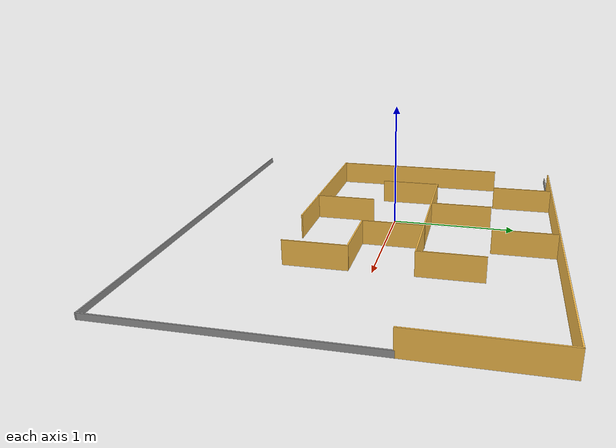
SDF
<?xml version='1.0'?>
<sdf version='1.6'>
 <world name='maze_world'>
  <model name='my_maze'>
    <pose frame=''>0.257 -0.171 0 0 -0 0</pose>
    <link name='Wall_27'>
      <collision name='Wall_27_Collision'>
        <geometry>
          <box>
            <size>3 0.01 0.2</size>
          </box>
        </geometry>
        <pose frame=''>0 0 0.1 0 -0 0</pose>
      </collision>
      <visual name='Wall_27_Visual'>
        <pose frame=''>0 0 0.1 0 -0 0</pose>
        <geometry>
          <box>
            <size>3 0.01 0.2</size>
          </box>
        </geometry>
        <material>
          <script>
            <uri>file://media/materials/scripts/gazebo.material</uri>
            <name>Gazebo/Grey</name>
          </script>
          <ambient>1 0.764706 0.305882 1</ambient>
        </material>
      </visual>
      <pose frame=''>0.25 1.49 0 0 -0 0</pose>
    </link>
    <link name='Wall_29'>
      <collision name='Wall_29_Collision'>
        <geometry>
          <box>
            <size>0.5 0.01 0.2</size>
          </box>
        </geometry>
        <pose frame=''>0 0 0.1 0 -0 0</pose>
      </collision>
      <visual name='Wall_29_Visual'>
        <pose frame=''>0 0 0.1 0 -0 0</pose>
        <geometry>
          <box>
            <size>0.5 0.01 0.2</size>
          </box>
        </geometry>
        <material>
          <script>
            <uri>file://media/materials/scripts/gazebo.material</uri>
            <name>Gazebo/Grey</name>
          </script>
          <ambient>1 0.764706 0.305882 1</ambient>
        </material>
      </visual>
      <pose frame=''>-0.757 1.239 0 0 0 -1.5708</pose>
    </link>
    <link name='Wall_31'>
      <collision name='Wall_31_Collision'>
        <geometry>
          <box>
            <size>0.5 0.01 0.2</size>
          </box>
        </geometry>
        <pose frame=''>0 0 0.1 0 -0 0</pose>
      </collision>
      <visual name='Wall_31_Visual'>
        <pose frame=''>0 0 0.1 0 -0 0</pose>
        <geometry>
          <box>
            <size>0.5 0.01 0.2</size>
          </box>
        </geometry>
        <material>
          <script>
            <uri>file://media/materials/scripts/gazebo.material</uri>
            <name>Gazebo/Grey</name>
          </script>
          <ambient>1 0.764706 0.305882 1</ambient>
        </material>
      </visual>
      <pose frame=''>0.237 1.243 0 0 0 -1.5708</pose>
    </link>
    <link name='Wall_33'>
      <collision name='Wall_33_Collision'>
        <geometry>
          <box>
            <size>0.36 0.01 0.05</size>
          </box>
        </geometry>
        <pose frame=''>0 0 0.025 0 -0 0</pose>
      </collision>
      <visual name='Wall_33_Visual'>
        <pose frame=''>0 0 0.025 0 -0 0</pose>
        <geometry>
          <box>
            <size>0.36 0.01 0.05</size>
          </box>
        </geometry>
        <material>
          <script>
            <uri>file://media/materials/scripts/gazebo.material</uri>
            <name>Gazebo/Grey</name>
          </script>
          <ambient>0 0 0 1</ambient>
        </material>
      </visual>
      <pose frame=''>-1.42 1.49 0 0 -0 3.14159</pose>
    </link>
    <link name='Wall_35'>
      <collision name='Wall_35_Collision'>
        <geometry>
          <box>
            <size>1 0.01 0.2</size>
          </box>
        </geometry>
        <pose frame=''>0 0 0.1 0 -0 0</pose>
      </collision>
      <visual name='Wall_35_Visual'>
        <pose frame=''>0 0 0.1 0 -0 0</pose>
        <geometry>
          <box>
            <size>1 0.01 0.2</size>
          </box>
        </geometry>
        <material>
          <script>
            <uri>file://media/materials/scripts/gazebo.material</uri>
            <name>Gazebo/Grey</name>
          </script>
          <ambient>1 0.764706 0.305882 1</ambient>
        </material>
      </visual>
      <pose frame=''>1.745 0.995 0 0 0 -1.5708</pose>
    </link>
    <link name='Wall_38'>
      <collision name='Wall_38_Collision'>
        <geometry>
          <box>
            <size>1.5 0.01 0.2</size>
          </box>
        </geometry>
        <pose frame=''>0 0 0.1 0 -0 0</pose>
      </collision>
      <visual name='Wall_38_Visual'>
        <pose frame=''>0 0 0.1 0 -0 0</pose>
        <geometry>
          <box>
            <size>1.5 0.01 0.2</size>
          </box>
        </geometry>
        <material>
          <script>
            <uri>file://media/materials/scripts/gazebo.material</uri>
            <name>Gazebo/Grey</name>
          </script>
          <ambient>1 0.764706 0.305882 1</ambient>
        </material>
      </visual>
      <pose frame=''>-1.249 0.243 0 0 0 -1.5708</pose>
    </link>
    <link name='Wall_39'>
      <collision name='Wall_39_Collision'>
        <geometry>
          <box>
            <size>1.5 0.01 0.2</size>
          </box>
        </geometry>
        <pose frame=''>0 0 0.1 0 -0 0</pose>
      </collision>
      <visual name='Wall_39_Visual'>
        <pose frame=''>0 0 0.1 0 -0 0</pose>
        <geometry>
          <box>
            <size>1.5 0.01 0.2</size>
          </box>
        </geometry>
        <material>
          <script>
            <uri>file://media/materials/scripts/gazebo.material</uri>
            <name>Gazebo/Grey</name>
          </script>
          <ambient>1 0.764706 0.305882 1</ambient>
        </material>
      </visual>
      <pose frame=''>-0.504 -0.502 0 0 -0 0</pose>
    </link>
    <link name='Wall_41'>
      <collision name='Wall_41_Collision'>
        <geometry>
          <box>
            <size>0.5 0.01 0.2</size>
          </box>
        </geometry>
        <pose frame=''>0 0 0.1 0 -0 0</pose>
      </collision>
      <visual name='Wall_41_Visual'>
        <pose frame=''>0 0 0.1 0 -0 0</pose>
        <geometry>
          <box>
            <size>0.5 0.01 0.2</size>
          </box>
        </geometry>
        <material>
          <script>
            <uri>file://media/materials/scripts/gazebo.material</uri>
            <name>Gazebo/Grey</name>
          </script>
          <ambient>1 0.764706 0.305882 1</ambient>
        </material>
      </visual>
      <pose frame=''>-0.753 0.236 0 0 -0 1.5708</pose>
    </link>
    <link name='Wall_42'>
      <collision name='Wall_42_Collision'>
        <geometry>
          <box>
            <size>1.5 0.01 0.2</size>
          </box>
        </geometry>
        <pose frame=''>0 0 0.1 0 -0 0</pose>
      </collision>
      <visual name='Wall_42_Visual'>
        <pose frame=''>0 0 0.1 0 -0 0</pose>
        <geometry>
          <box>
            <size>1.5 0.01 0.2</size>
          </box>
        </geometry>
        <material>
          <script>
            <uri>file://media/materials/scripts/gazebo.material</uri>
            <name>Gazebo/Grey</name>
          </script>
          <ambient>1 0.764706 0.305882 1</ambient>
        </material>
      </visual>
      <pose frame=''>-0.008 0.481 0 0 -0 0</pose>
    </link>
    <link name='Wall_43'>
      <collision name='Wall_43_Collision'>
        <geometry>
          <box>
            <size>0.5 0.01 0.2</size>
          </box>
        </geometry>
        <pose frame=''>0 0 0.1 0 -0 0</pose>
      </collision>
      <visual name='Wall_43_Visual'>
        <pose frame=''>0 0 0.1 0 -0 0</pose>
        <geometry>
          <box>
            <size>0.5 0.01 0.2</size>
          </box>
        </geometry>
        <material>
          <script>
            <uri>file://media/materials/scripts/gazebo.material</uri>
            <name>Gazebo/Grey</name>
          </script>
          <ambient>1 0.764706 0.305882 1</ambient>
        </material>
      </visual>
      <pose frame=''>0.737 0.726 0 0 -0 1.5708</pose>
    </link>
    <link name='Wall_45'>
      <collision name='Wall_45_Collision'>
        <geometry>
          <box>
            <size>0.5 0.01 0.2</size>
          </box>
        </geometry>
        <pose frame=''>0 0 0.1 0 -0 0</pose>
      </collision>
      <visual name='Wall_45_Visual'>
        <pose frame=''>0 0 0.1 0 -0 0</pose>
        <geometry>
          <box>
            <size>0.5 0.01 0.2</size>
          </box>
        </geometry>
        <material>
          <script>
            <uri>file://media/materials/scripts/gazebo.material</uri>
            <name>Gazebo/Grey</name>
          </script>
          <ambient>1 0.764706 0.305882 1</ambient>
        </material>
      </visual>
      <pose frame=''>-0.247 0.729 0 0 -0 1.5708</pose>
    </link>
    <link name='Wall_47'>
      <collision name='Wall_47_Collision'>
        <geometry>
          <box>
            <size>0.5 0.01 0.2</size>
          </box>
        </geometry>
        <pose frame=''>0 0 0.1 0 -0 0</pose>
      </collision>
      <visual name='Wall_47_Visual'>
        <pose frame=''>0 0 0.1 0 -0 0</pose>
        <geometry>
          <box>
            <size>0.5 0.01 0.2</size>
          </box>
        </geometry>
        <material>
          <script>
            <uri>file://media/materials/scripts/gazebo.material</uri>
            <name>Gazebo/Grey</name>
          </script>
          <ambient>1 0.764706 0.305882 1</ambient>
        </material>
      </visual>
      <pose frame=''>0.256 0.239 0 0 0 -1.5708</pose>
    </link>
    <link name='Wall_48'>
      <collision name='Wall_48_Collision'>
        <geometry>
          <box>
            <size>0.5 0.01 0.2</size>
          </box>
        </geometry>
        <pose frame=''>0 0 0.1 0 -0 0</pose>
      </collision>
      <visual name='Wall_48_Visual'>
        <pose frame=''>0 0 0.1 0 -0 0</pose>
        <geometry>
          <box>
            <size>0.5 0.01 0.2</size>
          </box>
        </geometry>
        <material>
          <script>
            <uri>file://media/materials/scripts/gazebo.material</uri>
            <name>Gazebo/Grey</name>
          </script>
          <ambient>1 0.764706 0.305882 1</ambient>
        </material>
      </visual>
      <pose frame=''>0.501 -0.006 0 0 -0 0</pose>
    </link>
    <link name='Wall_49'>
      <collision name='Wall_49_Collision'>
        <geometry>
          <box>
            <size>0.5 0.01 0.2</size>
          </box>
        </geometry>
        <pose frame=''>0 0 0.1 0 -0 0</pose>
      </collision>
      <visual name='Wall_49_Visual'>
        <pose frame=''>0 0 0.1 0 -0 0</pose>
        <geometry>
          <box>
            <size>0.5 0.01 0.2</size>
          </box>
        </geometry>
        <material>
          <script>
            <uri>file://media/materials/scripts/gazebo.material</uri>
            <name>Gazebo/Grey</name>
          </script>
          <ambient>1 0.764706 0.305882 1</ambient>
        </material>
      </visual>
      <pose frame=''>0.746 -0.251 0 0 0 -1.5708</pose>
    </link>
    <link name='Wall_51'>
      <collision name='Wall_51_Collision'>
        <geometry>
          <box>
            <size>0.5 0.01 0.2</size>
          </box>
        </geometry>
        <pose frame=''>0 0 0.1 0 -0 0</pose>
      </collision>
      <visual name='Wall_51_Visual'>
        <pose frame=''>0 0 0.1 0 -0 0</pose>
        <geometry>
          <box>
            <size>0.5 0.01 0.2</size>
          </box>
        </geometry>
        <material>
          <script>
            <uri>file://media/materials/scripts/gazebo.material</uri>
            <name>Gazebo/Grey</name>
          </script>
          <ambient>1 0.764706 0.305882 1</ambient>
        </material>
      </visual>
      <pose frame=''>-0.238 -0.259 0 0 -0 1.5708</pose>
    </link>
    <link name='Wall_53'>
      <collision name='Wall_53_Collision'>
        <geometry>
          <box>
            <size>2 0.01 0.05</size>
          </box>
        </geometry>
        <pose frame=''>0 0 0.025 0 -0 0</pose>
      </collision>
      <visual name='Wall_53_Visual'>
        <pose frame=''>0 0 0.025 0 -0 0</pose>
        <geometry>
          <box>
            <size>2 0.01 0.05</size>
          </box>
        </geometry>
        <material>
          <script>
            <uri>file://media/materials/scripts/gazebo.material</uri>
            <name>Gazebo/Grey</name>
          </script>
          <ambient>0 0 0 1</ambient>
        </material>
      </visual>
      <pose frame=''>1.745 -0.495 0 0 0 -1.5708</pose>
    </link>
    <link name='Wall_54'>
      <collision name='Wall_54_Collision'>
        <geometry>
          <box>
            <size>3.5 0.01 0.05</size>
          </box>
        </geometry>
        <pose frame=''>0 0 0.025 0 -0 0</pose>
      </collision>
      <visual name='Wall_54_Visual'>
        <pose frame=''>0 0 0.025 0 -0 0</pose>
        <geometry>
          <box>
            <size>3.5 0.01 0.05</size>
          </box>
        </geometry>
        <material>
          <script>
            <uri>file://media/materials/scripts/gazebo.material</uri>
            <name>Gazebo/Grey</name>
          </script>
          <ambient>0 0 0 1</ambient>
        </material>
      </visual>
      <pose frame=''>0 -1.49 0 0 -0 3.14159</pose>
    </link>
    <static>1</static>
  </model>
 </world>
</sdf>
